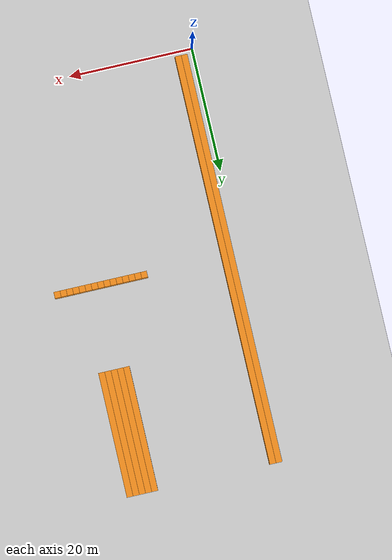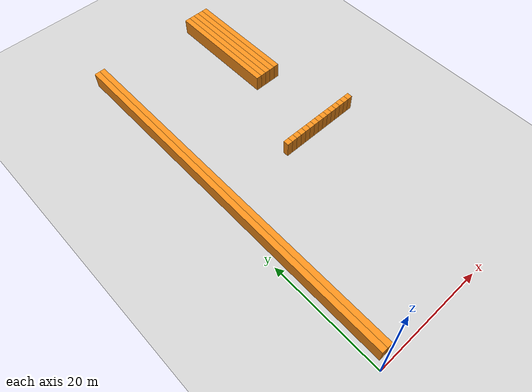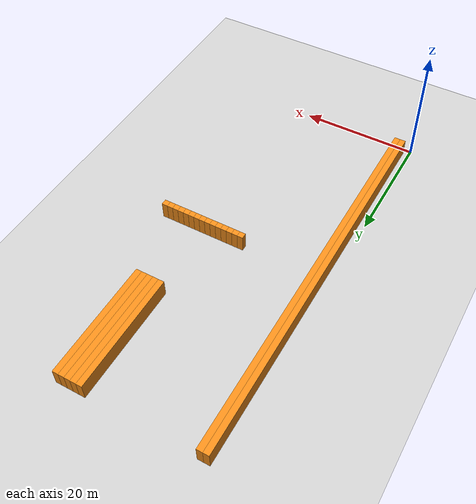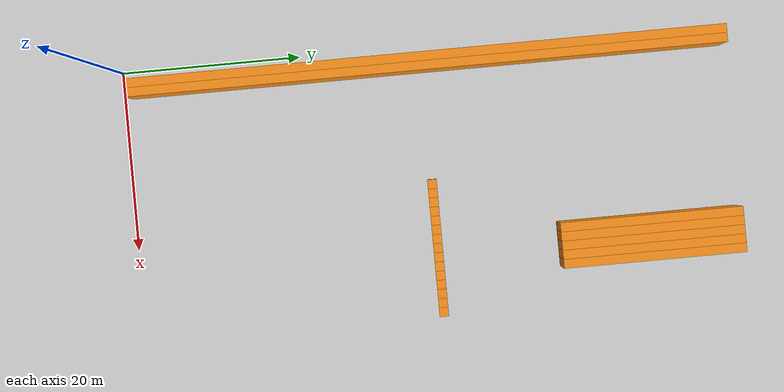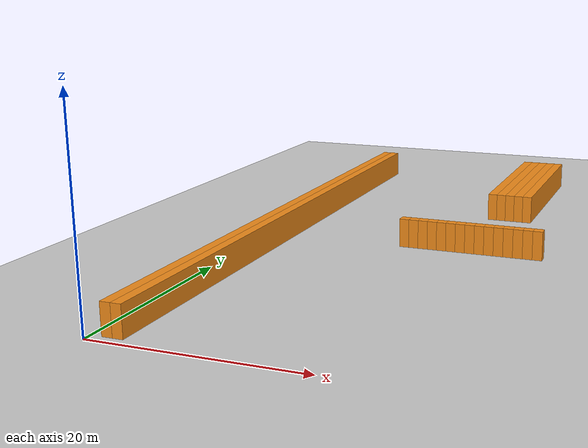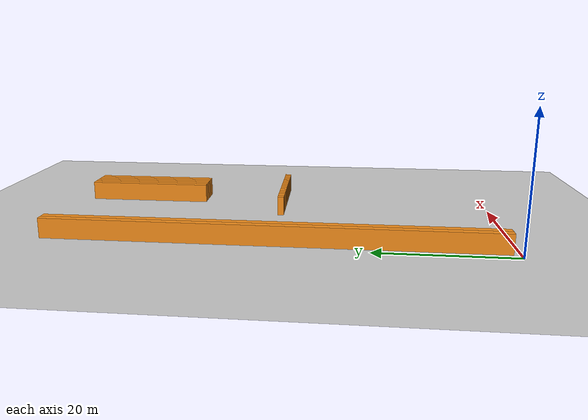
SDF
<sdf version="1.6">
 <world name="default">
  <include><uri>model://ground_plane</uri></include>
  <model name="unit_box_000">
   <pose>1.50    34.00     1.50 0 0 0</pose>
   <static>1</static>
   <link name="link">
    <inertial>
     <mass>5000</mass>
     <inertia><ixx>200</ixx><ixy>0</ixy><ixz>0</ixz><iyy>200</iyy><iyz>0</iyz><izz>200</izz></inertia>
    </inertial>
    <collision name="collision"><geometry><box><size>1 66 3</size></box></geometry></collision>
    <visual name="visual">
     <geometry><box><size>1 66 3</size></box></geometry>
     <material>
      <script><name>Gazebo/Orange</name><uri>file://media/materials/scripts/gazebo.material</uri></script>
     </material>
    </visual>
   </link>
  </model>
  <model name="unit_box_001">
   <pose>2.50    34.00     1.50 0 0 0</pose>
   <static>1</static>
   <link name="link">
    <inertial>
     <mass>5000</mass>
     <inertia><ixx>200</ixx><ixy>0</ixy><ixz>0</ixz><iyy>200</iyy><iyz>0</iyz><izz>200</izz></inertia>
    </inertial>
    <collision name="collision"><geometry><box><size>1 66 3</size></box></geometry></collision>
    <visual name="visual">
     <geometry><box><size>1 66 3</size></box></geometry>
     <material>
      <script><name>Gazebo/Orange</name><uri>file://media/materials/scripts/gazebo.material</uri></script>
     </material>
    </visual>
   </link>
  </model>
  <model name="unit_box_039">
   <pose>15.50    33.50     1.50 0 0 0</pose>
   <static>1</static>
   <link name="link">
    <inertial>
     <mass>5000</mass>
     <inertia><ixx>200</ixx><ixy>0</ixy><ixz>0</ixz><iyy>200</iyy><iyz>0</iyz><izz>200</izz></inertia>
    </inertial>
    <collision name="collision"><geometry><box><size>1 1 3</size></box></geometry></collision>
    <visual name="visual">
     <geometry><box><size>1 1 3</size></box></geometry>
     <material>
      <script><name>Gazebo/Orange</name><uri>file://media/materials/scripts/gazebo.material</uri></script>
     </material>
    </visual>
   </link>
  </model>
  <model name="unit_box_042">
   <pose>16.50    33.50     1.50 0 0 0</pose>
   <static>1</static>
   <link name="link">
    <inertial>
     <mass>5000</mass>
     <inertia><ixx>200</ixx><ixy>0</ixy><ixz>0</ixz><iyy>200</iyy><iyz>0</iyz><izz>200</izz></inertia>
    </inertial>
    <collision name="collision"><geometry><box><size>1 1 3</size></box></geometry></collision>
    <visual name="visual">
     <geometry><box><size>1 1 3</size></box></geometry>
     <material>
      <script><name>Gazebo/Orange</name><uri>file://media/materials/scripts/gazebo.material</uri></script>
     </material>
    </visual>
   </link>
  </model>
  <model name="unit_box_045">
   <pose>17.50    33.50     1.50 0 0 0</pose>
   <static>1</static>
   <link name="link">
    <inertial>
     <mass>5000</mass>
     <inertia><ixx>200</ixx><ixy>0</ixy><ixz>0</ixz><iyy>200</iyy><iyz>0</iyz><izz>200</izz></inertia>
    </inertial>
    <collision name="collision"><geometry><box><size>1 1 3</size></box></geometry></collision>
    <visual name="visual">
     <geometry><box><size>1 1 3</size></box></geometry>
     <material>
      <script><name>Gazebo/Orange</name><uri>file://media/materials/scripts/gazebo.material</uri></script>
     </material>
    </visual>
   </link>
  </model>
  <model name="unit_box_048">
   <pose>18.50    33.50     1.50 0 0 0</pose>
   <static>1</static>
   <link name="link">
    <inertial>
     <mass>5000</mass>
     <inertia><ixx>200</ixx><ixy>0</ixy><ixz>0</ixz><iyy>200</iyy><iyz>0</iyz><izz>200</izz></inertia>
    </inertial>
    <collision name="collision"><geometry><box><size>1 1 3</size></box></geometry></collision>
    <visual name="visual">
     <geometry><box><size>1 1 3</size></box></geometry>
     <material>
      <script><name>Gazebo/Orange</name><uri>file://media/materials/scripts/gazebo.material</uri></script>
     </material>
    </visual>
   </link>
  </model>
  <model name="unit_box_051">
   <pose>19.50    33.50     1.50 0 0 0</pose>
   <static>1</static>
   <link name="link">
    <inertial>
     <mass>5000</mass>
     <inertia><ixx>200</ixx><ixy>0</ixy><ixz>0</ixz><iyy>200</iyy><iyz>0</iyz><izz>200</izz></inertia>
    </inertial>
    <collision name="collision"><geometry><box><size>1 1 3</size></box></geometry></collision>
    <visual name="visual">
     <geometry><box><size>1 1 3</size></box></geometry>
     <material>
      <script><name>Gazebo/Orange</name><uri>file://media/materials/scripts/gazebo.material</uri></script>
     </material>
    </visual>
   </link>
  </model>
  <model name="unit_box_054">
   <pose>20.50    33.50     1.50 0 0 0</pose>
   <static>1</static>
   <link name="link">
    <inertial>
     <mass>5000</mass>
     <inertia><ixx>200</ixx><ixy>0</ixy><ixz>0</ixz><iyy>200</iyy><iyz>0</iyz><izz>200</izz></inertia>
    </inertial>
    <collision name="collision"><geometry><box><size>1 1 3</size></box></geometry></collision>
    <visual name="visual">
     <geometry><box><size>1 1 3</size></box></geometry>
     <material>
      <script><name>Gazebo/Orange</name><uri>file://media/materials/scripts/gazebo.material</uri></script>
     </material>
    </visual>
   </link>
  </model>
  <model name="unit_box_057">
   <pose>21.50    33.50     1.50 0 0 0</pose>
   <static>1</static>
   <link name="link">
    <inertial>
     <mass>5000</mass>
     <inertia><ixx>200</ixx><ixy>0</ixy><ixz>0</ixz><iyy>200</iyy><iyz>0</iyz><izz>200</izz></inertia>
    </inertial>
    <collision name="collision"><geometry><box><size>1 1 3</size></box></geometry></collision>
    <visual name="visual">
     <geometry><box><size>1 1 3</size></box></geometry>
     <material>
      <script><name>Gazebo/Orange</name><uri>file://media/materials/scripts/gazebo.material</uri></script>
     </material>
    </visual>
   </link>
  </model>
  <model name="unit_box_058">
   <pose>21.50    57.00     1.50 0 0 0</pose>
   <static>1</static>
   <link name="link">
    <inertial>
     <mass>5000</mass>
     <inertia><ixx>200</ixx><ixy>0</ixy><ixz>0</ixz><iyy>200</iyy><iyz>0</iyz><izz>200</izz></inertia>
    </inertial>
    <collision name="collision"><geometry><box><size>1 20 3</size></box></geometry></collision>
    <visual name="visual">
     <geometry><box><size>1 20 3</size></box></geometry>
     <material>
      <script><name>Gazebo/Orange</name><uri>file://media/materials/scripts/gazebo.material</uri></script>
     </material>
    </visual>
   </link>
  </model>
  <model name="unit_box_060">
   <pose>22.50    33.50     1.50 0 0 0</pose>
   <static>1</static>
   <link name="link">
    <inertial>
     <mass>5000</mass>
     <inertia><ixx>200</ixx><ixy>0</ixy><ixz>0</ixz><iyy>200</iyy><iyz>0</iyz><izz>200</izz></inertia>
    </inertial>
    <collision name="collision"><geometry><box><size>1 1 3</size></box></geometry></collision>
    <visual name="visual">
     <geometry><box><size>1 1 3</size></box></geometry>
     <material>
      <script><name>Gazebo/Orange</name><uri>file://media/materials/scripts/gazebo.material</uri></script>
     </material>
    </visual>
   </link>
  </model>
  <model name="unit_box_061">
   <pose>22.50    57.00     1.50 0 0 0</pose>
   <static>1</static>
   <link name="link">
    <inertial>
     <mass>5000</mass>
     <inertia><ixx>200</ixx><ixy>0</ixy><ixz>0</ixz><iyy>200</iyy><iyz>0</iyz><izz>200</izz></inertia>
    </inertial>
    <collision name="collision"><geometry><box><size>1 20 3</size></box></geometry></collision>
    <visual name="visual">
     <geometry><box><size>1 20 3</size></box></geometry>
     <material>
      <script><name>Gazebo/Orange</name><uri>file://media/materials/scripts/gazebo.material</uri></script>
     </material>
    </visual>
   </link>
  </model>
  <model name="unit_box_063">
   <pose>23.50    33.50     1.50 0 0 0</pose>
   <static>1</static>
   <link name="link">
    <inertial>
     <mass>5000</mass>
     <inertia><ixx>200</ixx><ixy>0</ixy><ixz>0</ixz><iyy>200</iyy><iyz>0</iyz><izz>200</izz></inertia>
    </inertial>
    <collision name="collision"><geometry><box><size>1 1 3</size></box></geometry></collision>
    <visual name="visual">
     <geometry><box><size>1 1 3</size></box></geometry>
     <material>
      <script><name>Gazebo/Orange</name><uri>file://media/materials/scripts/gazebo.material</uri></script>
     </material>
    </visual>
   </link>
  </model>
  <model name="unit_box_064">
   <pose>23.50    57.00     1.50 0 0 0</pose>
   <static>1</static>
   <link name="link">
    <inertial>
     <mass>5000</mass>
     <inertia><ixx>200</ixx><ixy>0</ixy><ixz>0</ixz><iyy>200</iyy><iyz>0</iyz><izz>200</izz></inertia>
    </inertial>
    <collision name="collision"><geometry><box><size>1 20 3</size></box></geometry></collision>
    <visual name="visual">
     <geometry><box><size>1 20 3</size></box></geometry>
     <material>
      <script><name>Gazebo/Orange</name><uri>file://media/materials/scripts/gazebo.material</uri></script>
     </material>
    </visual>
   </link>
  </model>
  <model name="unit_box_066">
   <pose>24.50    33.50     1.50 0 0 0</pose>
   <static>1</static>
   <link name="link">
    <inertial>
     <mass>5000</mass>
     <inertia><ixx>200</ixx><ixy>0</ixy><ixz>0</ixz><iyy>200</iyy><iyz>0</iyz><izz>200</izz></inertia>
    </inertial>
    <collision name="collision"><geometry><box><size>1 1 3</size></box></geometry></collision>
    <visual name="visual">
     <geometry><box><size>1 1 3</size></box></geometry>
     <material>
      <script><name>Gazebo/Orange</name><uri>file://media/materials/scripts/gazebo.material</uri></script>
     </material>
    </visual>
   </link>
  </model>
  <model name="unit_box_067">
   <pose>24.50    57.00     1.50 0 0 0</pose>
   <static>1</static>
   <link name="link">
    <inertial>
     <mass>5000</mass>
     <inertia><ixx>200</ixx><ixy>0</ixy><ixz>0</ixz><iyy>200</iyy><iyz>0</iyz><izz>200</izz></inertia>
    </inertial>
    <collision name="collision"><geometry><box><size>1 20 3</size></box></geometry></collision>
    <visual name="visual">
     <geometry><box><size>1 20 3</size></box></geometry>
     <material>
      <script><name>Gazebo/Orange</name><uri>file://media/materials/scripts/gazebo.material</uri></script>
     </material>
    </visual>
   </link>
  </model>
  <model name="unit_box_069">
   <pose>25.50    33.50     1.50 0 0 0</pose>
   <static>1</static>
   <link name="link">
    <inertial>
     <mass>5000</mass>
     <inertia><ixx>200</ixx><ixy>0</ixy><ixz>0</ixz><iyy>200</iyy><iyz>0</iyz><izz>200</izz></inertia>
    </inertial>
    <collision name="collision"><geometry><box><size>1 1 3</size></box></geometry></collision>
    <visual name="visual">
     <geometry><box><size>1 1 3</size></box></geometry>
     <material>
      <script><name>Gazebo/Orange</name><uri>file://media/materials/scripts/gazebo.material</uri></script>
     </material>
    </visual>
   </link>
  </model>
  <model name="unit_box_070">
   <pose>25.50    57.00     1.50 0 0 0</pose>
   <static>1</static>
   <link name="link">
    <inertial>
     <mass>5000</mass>
     <inertia><ixx>200</ixx><ixy>0</ixy><ixz>0</ixz><iyy>200</iyy><iyz>0</iyz><izz>200</izz></inertia>
    </inertial>
    <collision name="collision"><geometry><box><size>1 20 3</size></box></geometry></collision>
    <visual name="visual">
     <geometry><box><size>1 20 3</size></box></geometry>
     <material>
      <script><name>Gazebo/Orange</name><uri>file://media/materials/scripts/gazebo.material</uri></script>
     </material>
    </visual>
   </link>
  </model>
  <model name="unit_box_072">
   <pose>26.50    33.50     1.50 0 0 0</pose>
   <static>1</static>
   <link name="link">
    <inertial>
     <mass>5000</mass>
     <inertia><ixx>200</ixx><ixy>0</ixy><ixz>0</ixz><iyy>200</iyy><iyz>0</iyz><izz>200</izz></inertia>
    </inertial>
    <collision name="collision"><geometry><box><size>1 1 3</size></box></geometry></collision>
    <visual name="visual">
     <geometry><box><size>1 1 3</size></box></geometry>
     <material>
      <script><name>Gazebo/Orange</name><uri>file://media/materials/scripts/gazebo.material</uri></script>
     </material>
    </visual>
   </link>
  </model>
  <model name="unit_box_075">
   <pose>27.50    33.50     1.50 0 0 0</pose>
   <static>1</static>
   <link name="link">
    <inertial>
     <mass>5000</mass>
     <inertia><ixx>200</ixx><ixy>0</ixy><ixz>0</ixz><iyy>200</iyy><iyz>0</iyz><izz>200</izz></inertia>
    </inertial>
    <collision name="collision"><geometry><box><size>1 1 3</size></box></geometry></collision>
    <visual name="visual">
     <geometry><box><size>1 1 3</size></box></geometry>
     <material>
      <script><name>Gazebo/Orange</name><uri>file://media/materials/scripts/gazebo.material</uri></script>
     </material>
    </visual>
   </link>
  </model>
  <model name="unit_box_078">
   <pose>28.50    33.50     1.50 0 0 0</pose>
   <static>1</static>
   <link name="link">
    <inertial>
     <mass>5000</mass>
     <inertia><ixx>200</ixx><ixy>0</ixy><ixz>0</ixz><iyy>200</iyy><iyz>0</iyz><izz>200</izz></inertia>
    </inertial>
    <collision name="collision"><geometry><box><size>1 1 3</size></box></geometry></collision>
    <visual name="visual">
     <geometry><box><size>1 1 3</size></box></geometry>
     <material>
      <script><name>Gazebo/Orange</name><uri>file://media/materials/scripts/gazebo.material</uri></script>
     </material>
    </visual>
   </link>
  </model>
  <model name="unit_box_081">
   <pose>29.50    33.50     1.50 0 0 0</pose>
   <static>1</static>
   <link name="link">
    <inertial>
     <mass>5000</mass>
     <inertia><ixx>200</ixx><ixy>0</ixy><ixz>0</ixz><iyy>200</iyy><iyz>0</iyz><izz>200</izz></inertia>
    </inertial>
    <collision name="collision"><geometry><box><size>1 1 3</size></box></geometry></collision>
    <visual name="visual">
     <geometry><box><size>1 1 3</size></box></geometry>
     <material>
      <script><name>Gazebo/Orange</name><uri>file://media/materials/scripts/gazebo.material</uri></script>
     </material>
    </visual>
   </link>
  </model>
 </world>
</sdf>
